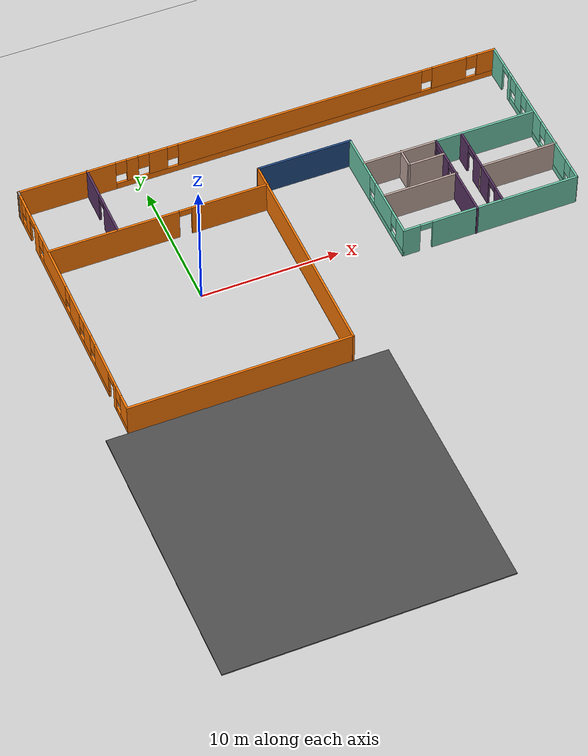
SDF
<sdf version="1.6">
 <world name="default">
  <model name="ground_plane">
   <static>1</static>
   <link name="link">
    <collision name="collision">
     <geometry><plane><normal>0 0 1</normal><size>100 100</size></plane></geometry>
     <surface>
      <contact><collide_bitmask>65535</collide_bitmask></contact>
      <friction><ode><mu>100</mu><mu2>50</mu2></ode></friction>
     </surface>
    </collision>
    <visual name="visual">
     <cast_shadows>0</cast_shadows>
     <geometry><plane><normal>0 0 1</normal><size>100 100</size></plane></geometry>
     <material>
      <script><uri>file://media/materials/scripts/gazebo.material</uri><name>Gazebo/Grey</name></script>
     </material>
    </visual>
   </link>
  </model>
  <model name="Thompson">
   <pose>9.07743 1.2048 0 0 -0 0</pose>
   <link name="Wall_15">
    <pose>-0.019631 10.2942 0 0 -0 0</pose>
    <visual name="Wall_15_Visual_0">
     <pose>-14.3246 0 1.25 0 -0 0</pose>
     <geometry><box><size>7.10078 0.15 2.5</size></box></geometry>
     <material>
      <script><uri>file://media/materials/scripts/gazebo.material</uri><name>Gazebo/Grey</name></script>
      <ambient>0.996078 0.47451 0.0196078 1</ambient>
     </material>
     <meta><layer>0</layer></meta>
    </visual>
    <collision name="Wall_15_Collision_0">
     <geometry><box><size>7.10078 0.15 2.5</size></box></geometry>
     <pose>-14.3246 0 1.25 0 -0 0</pose>
    </collision>
    <visual name="Wall_15_Visual_1">
     <pose>3.55039 0 0.25 0 -0 0</pose>
     <geometry><box><size>28.6492 0.15 0.5</size></box></geometry>
     <material>
      <script><uri>file://media/materials/scripts/gazebo.material</uri><name>Gazebo/Grey</name></script>
      <ambient>0.996078 0.47451 0.0196078 1</ambient>
     </material>
     <meta><layer>0</layer></meta>
    </visual>
    <collision name="Wall_15_Collision_1">
     <geometry><box><size>28.6492 0.15 0.5</size></box></geometry>
     <pose>3.55039 0 0.25 0 -0 0</pose>
    </collision>
    <visual name="Wall_15_Visual_2">
     <pose>-9.54752 0 1.5 0 -0 0</pose>
     <geometry><box><size>0.853402 0.15 2</size></box></geometry>
     <material>
      <script><uri>file://media/materials/scripts/gazebo.material</uri><name>Gazebo/Grey</name></script>
      <ambient>0.996078 0.47451 0.0196078 1</ambient>
     </material>
     <meta><layer>0</layer></meta>
    </visual>
    <collision name="Wall_15_Collision_2">
     <geometry><box><size>0.853402 0.15 2</size></box></geometry>
     <pose>-9.54752 0 1.5 0 -0 0</pose>
    </collision>
    <visual name="Wall_15_Visual_3">
     <pose>-7.64786 0 1.5 0 -0 0</pose>
     <geometry><box><size>1.3459 0.15 2</size></box></geometry>
     <material>
      <script><uri>file://media/materials/scripts/gazebo.material</uri><name>Gazebo/Grey</name></script>
      <ambient>0.996078 0.47451 0.0196078 1</ambient>
     </material>
     <meta><layer>0</layer></meta>
    </visual>
    <collision name="Wall_15_Collision_3">
     <geometry><box><size>1.3459 0.15 2</size></box></geometry>
     <pose>-7.64786 0 1.5 0 -0 0</pose>
    </collision>
    <visual name="Wall_15_Visual_4">
     <pose>3.0113 0 1.5 0 -0 0</pose>
     <geometry><box><size>18.3724 0.15 2</size></box></geometry>
     <material>
      <script><uri>file://media/materials/scripts/gazebo.material</uri><name>Gazebo/Grey</name></script>
      <ambient>0.996078 0.47451 0.0196078 1</ambient>
     </material>
     <meta><layer>0</layer></meta>
    </visual>
    <collision name="Wall_15_Collision_4">
     <geometry><box><size>18.3724 0.15 2</size></box></geometry>
     <pose>3.0113 0 1.5 0 -0 0</pose>
    </collision>
    <visual name="Wall_15_Visual_5">
     <pose>14.3213 0 1.5 0 -0 0</pose>
     <geometry><box><size>2.64752 0.15 2</size></box></geometry>
     <material>
      <script><uri>file://media/materials/scripts/gazebo.material</uri><name>Gazebo/Grey</name></script>
      <ambient>0.996078 0.47451 0.0196078 1</ambient>
     </material>
     <meta><layer>0</layer></meta>
    </visual>
    <collision name="Wall_15_Collision_5">
     <geometry><box><size>2.64752 0.15 2</size></box></geometry>
     <pose>14.3213 0 1.5 0 -0 0</pose>
    </collision>
    <visual name="Wall_15_Visual_6">
     <pose>17.16 0 1.5 0 -0 0</pose>
     <geometry><box><size>1.42996 0.15 2</size></box></geometry>
     <material>
      <script><uri>file://media/materials/scripts/gazebo.material</uri><name>Gazebo/Grey</name></script>
      <ambient>0.996078 0.47451 0.0196078 1</ambient>
     </material>
     <meta><layer>0</layer></meta>
    </visual>
    <collision name="Wall_15_Collision_6">
     <geometry><box><size>1.42996 0.15 2</size></box></geometry>
     <pose>17.16 0 1.5 0 -0 0</pose>
    </collision>
    <visual name="Wall_15_Visual_7">
     <pose>-10.3742 0 1.9 0 -0 0</pose>
     <geometry><box><size>0.8 0.15 1.2</size></box></geometry>
     <material>
      <script><uri>file://media/materials/scripts/gazebo.material</uri><name>Gazebo/Grey</name></script>
      <ambient>0.996078 0.47451 0.0196078 1</ambient>
     </material>
     <meta><layer>0</layer></meta>
    </visual>
    <collision name="Wall_15_Collision_7">
     <geometry><box><size>0.8 0.15 1.2</size></box></geometry>
     <pose>-10.3742 0 1.9 0 -0 0</pose>
    </collision>
    <visual name="Wall_15_Visual_8">
     <pose>-8.72081 0 1.9 0 -0 0</pose>
     <geometry><box><size>0.8 0.15 1.2</size></box></geometry>
     <material>
      <script><uri>file://media/materials/scripts/gazebo.material</uri><name>Gazebo/Grey</name></script>
      <ambient>0.996078 0.47451 0.0196078 1</ambient>
     </material>
     <meta><layer>0</layer></meta>
    </visual>
    <collision name="Wall_15_Collision_8">
     <geometry><box><size>0.8 0.15 1.2</size></box></geometry>
     <pose>-8.72081 0 1.9 0 -0 0</pose>
    </collision>
    <visual name="Wall_15_Visual_9">
     <pose>-6.57491 0 1.9 0 -0 0</pose>
     <geometry><box><size>0.8 0.15 1.2</size></box></geometry>
     <material>
      <script><uri>file://media/materials/scripts/gazebo.material</uri><name>Gazebo/Grey</name></script>
      <ambient>0.996078 0.47451 0.0196078 1</ambient>
     </material>
     <meta><layer>0</layer></meta>
    </visual>
    <collision name="Wall_15_Collision_9">
     <geometry><box><size>0.8 0.15 1.2</size></box></geometry>
     <pose>-6.57491 0 1.9 0 -0 0</pose>
    </collision>
    <visual name="Wall_15_Visual_10">
     <pose>12.5975 0 1.9 0 -0 0</pose>
     <geometry><box><size>0.8 0.15 1.2</size></box></geometry>
     <material>
      <script><uri>file://media/materials/scripts/gazebo.material</uri><name>Gazebo/Grey</name></script>
      <ambient>0.996078 0.47451 0.0196078 1</ambient>
     </material>
     <meta><layer>0</layer></meta>
    </visual>
    <collision name="Wall_15_Collision_10">
     <geometry><box><size>0.8 0.15 1.2</size></box></geometry>
     <pose>12.5975 0 1.9 0 -0 0</pose>
    </collision>
    <visual name="Wall_15_Visual_11">
     <pose>16.045 0 1.9 0 -0 0</pose>
     <geometry><box><size>0.8 0.15 1.2</size></box></geometry>
     <material>
      <script><uri>file://media/materials/scripts/gazebo.material</uri><name>Gazebo/Grey</name></script>
      <ambient>0.996078 0.47451 0.0196078 1</ambient>
     </material>
     <meta><layer>0</layer></meta>
    </visual>
    <collision name="Wall_15_Collision_11">
     <geometry><box><size>0.8 0.15 1.2</size></box></geometry>
     <pose>16.045 0 1.9 0 -0 0</pose>
    </collision>
   </link>
   <link name="Wall_16">
    <pose>17.7804 3.61924 0 0 -0 -1.5708</pose>
    <visual name="Wall_16_Visual_0">
     <pose>-5.8837 0 1.25 0 -0 0</pose>
     <geometry><box><size>1.7326 0.15 2.5</size></box></geometry>
     <material>
      <script><uri>file://media/materials/scripts/gazebo.material</uri><name>Gazebo/Grey</name></script>
      <ambient>0.435294 0.796078 0.67451 1</ambient>
     </material>
     <meta><layer>0</layer></meta>
    </visual>
    <collision name="Wall_16_Collision_0">
     <geometry><box><size>1.7326 0.15 2.5</size></box></geometry>
     <pose>-5.8837 0 1.25 0 -0 0</pose>
    </collision>
    <visual name="Wall_16_Visual_1">
     <pose>-3.90918 0 1.25 0 -0 0</pose>
     <geometry><box><size>0.416435 0.15 2.5</size></box></geometry>
     <material>
      <script><uri>file://media/materials/scripts/gazebo.material</uri><name>Gazebo/Grey</name></script>
      <ambient>0.435294 0.796078 0.67451 1</ambient>
     </material>
     <meta><layer>0</layer></meta>
    </visual>
    <collision name="Wall_16_Collision_1">
     <geometry><box><size>0.416435 0.15 2.5</size></box></geometry>
     <pose>-3.90918 0 1.25 0 -0 0</pose>
    </collision>
    <visual name="Wall_16_Visual_2">
     <pose>1.52452 0 0.25 0 -0 0</pose>
     <geometry><box><size>10.451 0.15 0.5</size></box></geometry>
     <material>
      <script><uri>file://media/materials/scripts/gazebo.material</uri><name>Gazebo/Grey</name></script>
      <ambient>0.435294 0.796078 0.67451 1</ambient>
     </material>
     <meta><layer>0</layer></meta>
    </visual>
    <collision name="Wall_16_Collision_2">
     <geometry><box><size>10.451 0.15 0.5</size></box></geometry>
     <pose>1.52452 0 0.25 0 -0 0</pose>
    </collision>
    <visual name="Wall_16_Visual_3">
     <pose>-2.43908 0 1.5 0 -0 0</pose>
     <geometry><box><size>0.92376 0.15 2</size></box></geometry>
     <material>
      <script><uri>file://media/materials/scripts/gazebo.material</uri><name>Gazebo/Grey</name></script>
      <ambient>0.435294 0.796078 0.67451 1</ambient>
     </material>
     <meta><layer>0</layer></meta>
    </visual>
    <collision name="Wall_16_Collision_3">
     <geometry><box><size>0.92376 0.15 2</size></box></geometry>
     <pose>-2.43908 0 1.5 0 -0 0</pose>
    </collision>
    <visual name="Wall_16_Visual_4">
     <pose>-0.033885 0 1.5 0 -0 0</pose>
     <geometry><box><size>2.28664 0.15 2</size></box></geometry>
     <material>
      <script><uri>file://media/materials/scripts/gazebo.material</uri><name>Gazebo/Grey</name></script>
      <ambient>0.435294 0.796078 0.67451 1</ambient>
     </material>
     <meta><layer>0</layer></meta>
    </visual>
    <collision name="Wall_16_Collision_4">
     <geometry><box><size>2.28664 0.15 2</size></box></geometry>
     <pose>-0.033885 0 1.5 0 -0 0</pose>
    </collision>
    <visual name="Wall_16_Visual_5">
     <pose>3.44881 0 1.5 0 -0 0</pose>
     <geometry><box><size>3.07876 0.15 2</size></box></geometry>
     <material>
      <script><uri>file://media/materials/scripts/gazebo.material</uri><name>Gazebo/Grey</name></script>
      <ambient>0.435294 0.796078 0.67451 1</ambient>
     </material>
     <meta><layer>0</layer></meta>
    </visual>
    <collision name="Wall_16_Collision_5">
     <geometry><box><size>3.07876 0.15 2</size></box></geometry>
     <pose>3.44881 0 1.5 0 -0 0</pose>
    </collision>
    <visual name="Wall_16_Visual_6">
     <pose>6.2691 0 1.5 0 -0 0</pose>
     <geometry><box><size>0.96181 0.15 2</size></box></geometry>
     <material>
      <script><uri>file://media/materials/scripts/gazebo.material</uri><name>Gazebo/Grey</name></script>
      <ambient>0.435294 0.796078 0.67451 1</ambient>
     </material>
     <meta><layer>0</layer></meta>
    </visual>
    <collision name="Wall_16_Collision_6">
     <geometry><box><size>0.96181 0.15 2</size></box></geometry>
     <pose>6.2691 0 1.5 0 -0 0</pose>
    </collision>
    <visual name="Wall_16_Visual_7">
     <pose>-3.30097 0 1.9 0 -0 0</pose>
     <geometry><box><size>0.8 0.15 1.2</size></box></geometry>
     <material>
      <script><uri>file://media/materials/scripts/gazebo.material</uri><name>Gazebo/Grey</name></script>
      <ambient>0.435294 0.796078 0.67451 1</ambient>
     </material>
     <meta><layer>0</layer></meta>
    </visual>
    <collision name="Wall_16_Collision_7">
     <geometry><box><size>0.8 0.15 1.2</size></box></geometry>
     <pose>-3.30097 0 1.9 0 -0 0</pose>
    </collision>
    <visual name="Wall_16_Visual_8">
     <pose>-1.5772 0 1.9 0 -0 0</pose>
     <geometry><box><size>0.8 0.15 1.2</size></box></geometry>
     <material>
      <script><uri>file://media/materials/scripts/gazebo.material</uri><name>Gazebo/Grey</name></script>
      <ambient>0.435294 0.796078 0.67451 1</ambient>
     </material>
     <meta><layer>0</layer></meta>
    </visual>
    <collision name="Wall_16_Collision_8">
     <geometry><box><size>0.8 0.15 1.2</size></box></geometry>
     <pose>-1.5772 0 1.9 0 -0 0</pose>
    </collision>
    <visual name="Wall_16_Visual_9">
     <pose>1.50943 0 1.9 0 -0 0</pose>
     <geometry><box><size>0.8 0.15 1.2</size></box></geometry>
     <material>
      <script><uri>file://media/materials/scripts/gazebo.material</uri><name>Gazebo/Grey</name></script>
      <ambient>0.435294 0.796078 0.67451 1</ambient>
     </material>
     <meta><layer>0</layer></meta>
    </visual>
    <collision name="Wall_16_Collision_9">
     <geometry><box><size>0.8 0.15 1.2</size></box></geometry>
     <pose>1.50943 0 1.9 0 -0 0</pose>
    </collision>
    <visual name="Wall_16_Visual_10">
     <pose>5.38819 0 1.9 0 -0 0</pose>
     <geometry><box><size>0.8 0.15 1.2</size></box></geometry>
     <material>
      <script><uri>file://media/materials/scripts/gazebo.material</uri><name>Gazebo/Grey</name></script>
      <ambient>0.435294 0.796078 0.67451 1</ambient>
     </material>
     <meta><layer>0</layer></meta>
    </visual>
    <collision name="Wall_16_Collision_10">
     <geometry><box><size>0.8 0.15 1.2</size></box></geometry>
     <pose>5.38819 0 1.9 0 -0 0</pose>
    </collision>
    <visual name="Wall_16_Visual_11">
     <pose>-4.5674 0 2.25 0 -0 0</pose>
     <geometry><box><size>0.9 0.15 0.5</size></box></geometry>
     <material>
      <script><uri>file://media/materials/scripts/gazebo.material</uri><name>Gazebo/Grey</name></script>
      <ambient>0.435294 0.796078 0.67451 1</ambient>
     </material>
     <meta><layer>0</layer></meta>
    </visual>
    <collision name="Wall_16_Collision_11">
     <geometry><box><size>0.9 0.15 0.5</size></box></geometry>
     <pose>-4.5674 0 2.25 0 -0 0</pose>
    </collision>
   </link>
   <link name="Wall_19">
    <collision name="Wall_19_Collision">
     <geometry><box><size>16.5 0.15 2.5</size></box></geometry>
     <pose>0 0 1.25 0 -0 0</pose>
    </collision>
    <visual name="Wall_19_Visual">
     <pose>0 0 1.25 0 -0 0</pose>
     <geometry><box><size>16.5 0.15 2.5</size></box></geometry>
     <material>
      <script><uri>file://media/materials/scripts/gazebo.material</uri><name>Gazebo/Grey</name></script>
      <ambient>0.996078 0.47451 0.0196078 1</ambient>
     </material>
     <meta><layer>0</layer></meta>
    </visual>
    <pose>-1.97014 -2.15348 0 0 -0 -1.5708</pose>
   </link>
   <link name="Wall_21">
    <pose>4.87986 1.47152 0 0 -0 -1.5708</pose>
    <visual name="Wall_21_Visual_0">
     <pose>-2.79191 0 1.25 0 -0 0</pose>
     <geometry><box><size>3.66617 0.15 2.5</size></box></geometry>
     <material>
      <script><uri>file://media/materials/scripts/gazebo.material</uri><name>Gazebo/Grey</name></script>
      <ambient>0.435294 0.796078 0.67451 1</ambient>
     </material>
     <meta><layer>0</layer></meta>
    </visual>
    <collision name="Wall_21_Collision_0">
     <geometry><box><size>3.66617 0.15 2.5</size></box></geometry>
     <pose>-2.79191 0 1.25 0 -0 0</pose>
    </collision>
    <visual name="Wall_21_Visual_1">
     <pose>1.83309 0 0.25 0 -0 0</pose>
     <geometry><box><size>5.58383 0.15 0.5</size></box></geometry>
     <material>
      <script><uri>file://media/materials/scripts/gazebo.material</uri><name>Gazebo/Grey</name></script>
      <ambient>0.435294 0.796078 0.67451 1</ambient>
     </material>
     <meta><layer>0</layer></meta>
    </visual>
    <collision name="Wall_21_Collision_1">
     <geometry><box><size>5.58383 0.15 0.5</size></box></geometry>
     <pose>1.83309 0 0.25 0 -0 0</pose>
    </collision>
    <visual name="Wall_21_Visual_2">
     <pose>1.23529 0 1.5 0 -0 0</pose>
     <geometry><box><size>2.78823 0.15 2</size></box></geometry>
     <material>
      <script><uri>file://media/materials/scripts/gazebo.material</uri><name>Gazebo/Grey</name></script>
      <ambient>0.435294 0.796078 0.67451 1</ambient>
     </material>
     <meta><layer>0</layer></meta>
    </visual>
    <collision name="Wall_21_Collision_2">
     <geometry><box><size>2.78823 0.15 2</size></box></geometry>
     <pose>1.23529 0 1.5 0 -0 0</pose>
    </collision>
    <visual name="Wall_21_Visual_3">
     <pose>4.0272 0 1.5 0 -0 0</pose>
     <geometry><box><size>1.1956 0.15 2</size></box></geometry>
     <material>
      <script><uri>file://media/materials/scripts/gazebo.material</uri><name>Gazebo/Grey</name></script>
      <ambient>0.435294 0.796078 0.67451 1</ambient>
     </material>
     <meta><layer>0</layer></meta>
    </visual>
    <collision name="Wall_21_Collision_3">
     <geometry><box><size>1.1956 0.15 2</size></box></geometry>
     <pose>4.0272 0 1.5 0 -0 0</pose>
    </collision>
    <visual name="Wall_21_Visual_4">
     <pose>-0.558831 0 1.9 0 -0 0</pose>
     <geometry><box><size>0.8 0.15 1.2</size></box></geometry>
     <material>
      <script><uri>file://media/materials/scripts/gazebo.material</uri><name>Gazebo/Grey</name></script>
      <ambient>0.435294 0.796078 0.67451 1</ambient>
     </material>
     <meta><layer>0</layer></meta>
    </visual>
    <collision name="Wall_21_Collision_4">
     <geometry><box><size>0.8 0.15 1.2</size></box></geometry>
     <pose>-0.558831 0 1.9 0 -0 0</pose>
    </collision>
    <visual name="Wall_21_Visual_5">
     <pose>3.0294 0 1.9 0 -0 0</pose>
     <geometry><box><size>0.8 0.15 1.2</size></box></geometry>
     <material>
      <script><uri>file://media/materials/scripts/gazebo.material</uri><name>Gazebo/Grey</name></script>
      <ambient>0.435294 0.796078 0.67451 1</ambient>
     </material>
     <meta><layer>0</layer></meta>
    </visual>
    <collision name="Wall_21_Collision_5">
     <geometry><box><size>0.8 0.15 1.2</size></box></geometry>
     <pose>3.0294 0 1.9 0 -0 0</pose>
    </collision>
   </link>
   <link name="Wall_23">
    <pose>11.3049 -3.07848 0 0 -0 0</pose>
    <visual name="Wall_23_Visual_0">
     <pose>-5.85955 0 1.25 0 -0 0</pose>
     <geometry><box><size>1.2809 0.15 2.5</size></box></geometry>
     <material>
      <script><uri>file://media/materials/scripts/gazebo.material</uri><name>Gazebo/Grey</name></script>
      <ambient>0.435294 0.796078 0.67451 1</ambient>
     </material>
     <meta><layer>0</layer></meta>
    </visual>
    <collision name="Wall_23_Collision_0">
     <geometry><box><size>1.2809 0.15 2.5</size></box></geometry>
     <pose>-5.85955 0 1.25 0 -0 0</pose>
    </collision>
    <visual name="Wall_23_Visual_1">
     <pose>1.09045 0 1.25 0 -0 0</pose>
     <geometry><box><size>10.8191 0.15 2.5</size></box></geometry>
     <material>
      <script><uri>file://media/materials/scripts/gazebo.material</uri><name>Gazebo/Grey</name></script>
      <ambient>0.435294 0.796078 0.67451 1</ambient>
     </material>
     <meta><layer>0</layer></meta>
    </visual>
    <collision name="Wall_23_Collision_1">
     <geometry><box><size>10.8191 0.15 2.5</size></box></geometry>
     <pose>1.09045 0 1.25 0 -0 0</pose>
    </collision>
    <visual name="Wall_23_Visual_2">
     <pose>-4.7691 0 2.25 0 -0 0</pose>
     <geometry><box><size>0.9 0.15 0.5</size></box></geometry>
     <material>
      <script><uri>file://media/materials/scripts/gazebo.material</uri><name>Gazebo/Grey</name></script>
      <ambient>0.435294 0.796078 0.67451 1</ambient>
     </material>
     <meta><layer>0</layer></meta>
    </visual>
    <collision name="Wall_23_Collision_2">
     <geometry><box><size>0.9 0.15 0.5</size></box></geometry>
     <pose>-4.7691 0 2.25 0 -0 0</pose>
    </collision>
   </link>
   <link name="Wall_25">
    <pose>-9.85667 4.42323 0 0 -0 3.14159</pose>
    <visual name="Wall_25_Visual_0">
     <pose>-5.16838 0 1.25 0 -0 0</pose>
     <geometry><box><size>5.66324 0.15 2.5</size></box></geometry>
     <material>
      <script><uri>file://media/materials/scripts/gazebo.material</uri><name>Gazebo/Grey</name></script>
      <ambient>0.996078 0.47451 0.0196078 1</ambient>
     </material>
     <meta><layer>0</layer></meta>
    </visual>
    <collision name="Wall_25_Collision_0">
     <geometry><box><size>5.66324 0.15 2.5</size></box></geometry>
     <pose>-5.16838 0 1.25 0 -0 0</pose>
    </collision>
    <visual name="Wall_25_Visual_1">
     <pose>3.28162 0 1.25 0 -0 0</pose>
     <geometry><box><size>9.43675 0.15 2.5</size></box></geometry>
     <material>
      <script><uri>file://media/materials/scripts/gazebo.material</uri><name>Gazebo/Grey</name></script>
      <ambient>0.996078 0.47451 0.0196078 1</ambient>
     </material>
     <meta><layer>0</layer></meta>
    </visual>
    <collision name="Wall_25_Collision_1">
     <geometry><box><size>9.43675 0.15 2.5</size></box></geometry>
     <pose>3.28162 0 1.25 0 -0 0</pose>
    </collision>
    <visual name="Wall_25_Visual_2">
     <pose>-1.88675 0 2.25 0 -0 0</pose>
     <geometry><box><size>0.9 0.15 0.5</size></box></geometry>
     <material>
      <script><uri>file://media/materials/scripts/gazebo.material</uri><name>Gazebo/Grey</name></script>
      <ambient>0.996078 0.47451 0.0196078 1</ambient>
     </material>
     <meta><layer>0</layer></meta>
    </visual>
    <collision name="Wall_25_Collision_2">
     <geometry><box><size>0.9 0.15 0.5</size></box></geometry>
     <pose>-1.88675 0 2.25 0 -0 0</pose>
    </collision>
   </link>
   <link name="Wall_27">
    <pose>-12.8378 7.40348 0 0 -0 -1.5708</pose>
    <visual name="Wall_27_Visual_0">
     <pose>-1.76439 0 1.25 0 -0 0</pose>
     <geometry><box><size>2.47122 0.15 2.5</size></box></geometry>
     <material>
      <script><uri>file://media/materials/scripts/gazebo.material</uri><name>Gazebo/Grey</name></script>
      <ambient>0.360784 0.207843 0.4 1</ambient>
     </material>
     <meta><layer>0</layer></meta>
    </visual>
    <collision name="Wall_27_Collision_0">
     <geometry><box><size>2.47122 0.15 2.5</size></box></geometry>
     <pose>-1.76439 0 1.25 0 -0 0</pose>
    </collision>
    <visual name="Wall_27_Visual_1">
     <pose>1.68561 0 1.25 0 -0 0</pose>
     <geometry><box><size>2.62878 0.15 2.5</size></box></geometry>
     <material>
      <script><uri>file://media/materials/scripts/gazebo.material</uri><name>Gazebo/Grey</name></script>
      <ambient>0.360784 0.207843 0.4 1</ambient>
     </material>
     <meta><layer>0</layer></meta>
    </visual>
    <collision name="Wall_27_Collision_1">
     <geometry><box><size>2.62878 0.15 2.5</size></box></geometry>
     <pose>1.68561 0 1.25 0 -0 0</pose>
    </collision>
    <visual name="Wall_27_Visual_2">
     <pose>-0.078778 0 2.25 0 -0 0</pose>
     <geometry><box><size>0.9 0.15 0.5</size></box></geometry>
     <material>
      <script><uri>file://media/materials/scripts/gazebo.material</uri><name>Gazebo/Grey</name></script>
      <ambient>0.360784 0.207843 0.4 1</ambient>
     </material>
     <meta><layer>0</layer></meta>
    </visual>
    <collision name="Wall_27_Collision_2">
     <geometry><box><size>0.9 0.15 0.5</size></box></geometry>
     <pose>-0.078778 0 2.25 0 -0 0</pose>
    </collision>
   </link>
   <link name="Wall_3">
    <pose>-17.8196 -0.130763 0 0 -0 -1.5708</pose>
    <visual name="Wall_3_Visual_0">
     <pose>-9.95861 0 1.25 0 -0 0</pose>
     <geometry><box><size>0.582773 0.15 2.5</size></box></geometry>
     <material>
      <script><uri>file://media/materials/scripts/gazebo.material</uri><name>Gazebo/Grey</name></script>
      <ambient>0.996078 0.47451 0.0196078 1</ambient>
     </material>
     <meta><layer>0</layer></meta>
    </visual>
    <collision name="Wall_3_Collision_0">
     <geometry><box><size>0.582773 0.15 2.5</size></box></geometry>
     <pose>-9.95861 0 1.25 0 -0 0</pose>
    </collision>
    <visual name="Wall_3_Visual_1">
     <pose>-6.72654 0 1.25 0 -0 0</pose>
     <geometry><box><size>0.872952 0.15 2.5</size></box></geometry>
     <material>
      <script><uri>file://media/materials/scripts/gazebo.material</uri><name>Gazebo/Grey</name></script>
      <ambient>0.996078 0.47451 0.0196078 1</ambient>
     </material>
     <meta><layer>0</layer></meta>
    </visual>
    <collision name="Wall_3_Collision_1">
     <geometry><box><size>0.872952 0.15 2.5</size></box></geometry>
     <pose>-6.72654 0 1.25 0 -0 0</pose>
    </collision>
    <visual name="Wall_3_Visual_2">
     <pose>8.01044 0 1.25 0 -0 0</pose>
     <geometry><box><size>0.448286 0.15 2.5</size></box></geometry>
     <material>
      <script><uri>file://media/materials/scripts/gazebo.material</uri><name>Gazebo/Grey</name></script>
      <ambient>0.996078 0.47451 0.0196078 1</ambient>
     </material>
     <meta><layer>0</layer></meta>
    </visual>
    <collision name="Wall_3_Collision_2">
     <geometry><box><size>0.448286 0.15 2.5</size></box></geometry>
     <pose>8.01044 0 1.25 0 -0 0</pose>
    </collision>
    <visual name="Wall_3_Visual_3">
     <pose>-8.86512 0 0.25 0 -0 0</pose>
     <geometry><box><size>1.60421 0.15 0.5</size></box></geometry>
     <material>
      <script><uri>file://media/materials/scripts/gazebo.material</uri><name>Gazebo/Grey</name></script>
      <ambient>0.996078 0.47451 0.0196078 1</ambient>
     </material>
     <meta><layer>0</layer></meta>
    </visual>
    <collision name="Wall_3_Collision_3">
     <geometry><box><size>1.60421 0.15 0.5</size></box></geometry>
     <pose>-8.86512 0 0.25 0 -0 0</pose>
    </collision>
    <visual name="Wall_3_Visual_4">
     <pose>0.298114 0 0.25 0 -0 0</pose>
     <geometry><box><size>13.1764 0.15 0.5</size></box></geometry>
     <material>
      <script><uri>file://media/materials/scripts/gazebo.material</uri><name>Gazebo/Grey</name></script>
      <ambient>0.996078 0.47451 0.0196078 1</ambient>
     </material>
     <meta><layer>0</layer></meta>
    </visual>
    <collision name="Wall_3_Collision_4">
     <geometry><box><size>13.1764 0.15 0.5</size></box></geometry>
     <pose>0.298114 0 0.25 0 -0 0</pose>
    </collision>
    <visual name="Wall_3_Visual_5">
     <pose>9.24229 0 0.25 0 -0 0</pose>
     <geometry><box><size>2.01542 0.15 0.5</size></box></geometry>
     <material>
      <script><uri>file://media/materials/scripts/gazebo.material</uri><name>Gazebo/Grey</name></script>
      <ambient>0.996078 0.47451 0.0196078 1</ambient>
     </material>
     <meta><layer>0</layer></meta>
    </visual>
    <collision name="Wall_3_Collision_5">
     <geometry><box><size>2.01542 0.15 0.5</size></box></geometry>
     <pose>9.24229 0 0.25 0 -0 0</pose>
    </collision>
    <visual name="Wall_3_Visual_6">
     <pose>-8.46512 0 1.5 0 -0 0</pose>
     <geometry><box><size>0.804209 0.15 2</size></box></geometry>
     <material>
      <script><uri>file://media/materials/scripts/gazebo.material</uri><name>Gazebo/Grey</name></script>
      <ambient>0.996078 0.47451 0.0196078 1</ambient>
     </material>
     <meta><layer>0</layer></meta>
    </visual>
    <collision name="Wall_3_Collision_6">
     <geometry><box><size>0.804209 0.15 2</size></box></geometry>
     <pose>-8.46512 0 1.5 0 -0 0</pose>
    </collision>
    <visual name="Wall_3_Visual_7">
     <pose>-8.46512 0 1.5 0 -0 0</pose>
     <geometry><box><size>0.804209 0.15 2</size></box></geometry>
     <material>
      <script><uri>file://media/materials/scripts/gazebo.material</uri><name>Gazebo/Grey</name></script>
      <ambient>0.996078 0.47451 0.0196078 1</ambient>
     </material>
     <meta><layer>0</layer></meta>
    </visual>
    <collision name="Wall_3_Collision_7">
     <geometry><box><size>0.804209 0.15 2</size></box></geometry>
     <pose>-8.46512 0 1.5 0 -0 0</pose>
    </collision>
    <visual name="Wall_3_Visual_8">
     <pose>-3.32202 0 1.5 0 -0 0</pose>
     <geometry><box><size>4.3361 0.15 2</size></box></geometry>
     <material>
      <script><uri>file://media/materials/scripts/gazebo.material</uri><name>Gazebo/Grey</name></script>
      <ambient>0.996078 0.47451 0.0196078 1</ambient>
     </material>
     <meta><layer>0</layer></meta>
    </visual>
    <collision name="Wall_3_Collision_8">
     <geometry><box><size>4.3361 0.15 2</size></box></geometry>
     <pose>-3.32202 0 1.5 0 -0 0</pose>
    </collision>
    <visual name="Wall_3_Visual_9">
     <pose>0.565237 0 1.5 0 -0 0</pose>
     <geometry><box><size>1.83841 0.15 2</size></box></geometry>
     <material>
      <script><uri>file://media/materials/scripts/gazebo.material</uri><name>Gazebo/Grey</name></script>
      <ambient>0.996078 0.47451 0.0196078 1</ambient>
     </material>
     <meta><layer>0</layer></meta>
    </visual>
    <collision name="Wall_3_Collision_9">
     <geometry><box><size>1.83841 0.15 2</size></box></geometry>
     <pose>0.565237 0 1.5 0 -0 0</pose>
    </collision>
    <visual name="Wall_3_Visual_10">
     <pose>2.90462 0 1.5 0 -0 0</pose>
     <geometry><box><size>1.24037 0.15 2</size></box></geometry>
     <material>
      <script><uri>file://media/materials/scripts/gazebo.material</uri><name>Gazebo/Grey</name></script>
      <ambient>0.996078 0.47451 0.0196078 1</ambient>
     </material>
     <meta><layer>0</layer></meta>
    </visual>
    <collision name="Wall_3_Collision_10">
     <geometry><box><size>1.24037 0.15 2</size></box></geometry>
     <pose>2.90462 0 1.5 0 -0 0</pose>
    </collision>
    <visual name="Wall_3_Visual_11">
     <pose>5.60555 0 1.5 0 -0 0</pose>
     <geometry><box><size>2.56148 0.15 2</size></box></geometry>
     <material>
      <script><uri>file://media/materials/scripts/gazebo.material</uri><name>Gazebo/Grey</name></script>
      <ambient>0.996078 0.47451 0.0196078 1</ambient>
     </material>
     <meta><layer>0</layer></meta>
    </visual>
    <collision name="Wall_3_Collision_11">
     <geometry><box><size>2.56148 0.15 2</size></box></geometry>
     <pose>5.60555 0 1.5 0 -0 0</pose>
    </collision>
    <visual name="Wall_3_Visual_12">
     <pose>5.60555 0 1.5 0 -0 0</pose>
     <geometry><box><size>2.56148 0.15 2</size></box></geometry>
     <material>
      <script><uri>file://media/materials/scripts/gazebo.material</uri><name>Gazebo/Grey</name></script>
      <ambient>0.996078 0.47451 0.0196078 1</ambient>
     </material>
     <meta><layer>0</layer></meta>
    </visual>
    <collision name="Wall_3_Collision_12">
     <geometry><box><size>2.56148 0.15 2</size></box></geometry>
     <pose>5.60555 0 1.5 0 -0 0</pose>
    </collision>
    <visual name="Wall_3_Visual_13">
     <pose>9.64229 0 1.5 0 -0 0</pose>
     <geometry><box><size>1.21542 0.15 2</size></box></geometry>
     <material>
      <script><uri>file://media/materials/scripts/gazebo.material</uri><name>Gazebo/Grey</name></script>
      <ambient>0.996078 0.47451 0.0196078 1</ambient>
     </material>
     <meta><layer>0</layer></meta>
    </visual>
    <collision name="Wall_3_Collision_13">
     <geometry><box><size>1.21542 0.15 2</size></box></geometry>
     <pose>9.64229 0 1.5 0 -0 0</pose>
    </collision>
    <visual name="Wall_3_Visual_14">
     <pose>-9.26723 0 1.9 0 -0 0</pose>
     <geometry><box><size>0.8 0.15 1.2</size></box></geometry>
     <material>
      <script><uri>file://media/materials/scripts/gazebo.material</uri><name>Gazebo/Grey</name></script>
      <ambient>0.996078 0.47451 0.0196078 1</ambient>
     </material>
     <meta><layer>0</layer></meta>
    </visual>
    <collision name="Wall_3_Collision_14">
     <geometry><box><size>0.8 0.15 1.2</size></box></geometry>
     <pose>-9.26723 0 1.9 0 -0 0</pose>
    </collision>
    <visual name="Wall_3_Visual_15">
     <pose>-5.89006 0 1.9 0 -0 0</pose>
     <geometry><box><size>0.8 0.15 1.2</size></box></geometry>
     <material>
      <script><uri>file://media/materials/scripts/gazebo.material</uri><name>Gazebo/Grey</name></script>
      <ambient>0.996078 0.47451 0.0196078 1</ambient>
     </material>
     <meta><layer>0</layer></meta>
    </visual>
    <collision name="Wall_3_Collision_15">
     <geometry><box><size>0.8 0.15 1.2</size></box></geometry>
     <pose>-5.89006 0 1.9 0 -0 0</pose>
    </collision>
    <visual name="Wall_3_Visual_16">
     <pose>8.63458 0 1.9 0 -0 0</pose>
     <geometry><box><size>0.8 0.15 1.2</size></box></geometry>
     <material>
      <script><uri>file://media/materials/scripts/gazebo.material</uri><name>Gazebo/Grey</name></script>
      <ambient>0.996078 0.47451 0.0196078 1</ambient>
     </material>
     <meta><layer>0</layer></meta>
    </visual>
    <collision name="Wall_3_Collision_16">
     <geometry><box><size>0.8 0.15 1.2</size></box></geometry>
     <pose>8.63458 0 1.9 0 -0 0</pose>
    </collision>
    <visual name="Wall_3_Visual_17">
     <pose>-0.753966 0 1.9 0 -0 0</pose>
     <geometry><box><size>0.8 0.15 1.2</size></box></geometry>
     <material>
      <script><uri>file://media/materials/scripts/gazebo.material</uri><name>Gazebo/Grey</name></script>
      <ambient>0.996078 0.47451 0.0196078 1</ambient>
     </material>
     <meta><layer>0</layer></meta>
    </visual>
    <collision name="Wall_3_Collision_17">
     <geometry><box><size>0.8 0.15 1.2</size></box></geometry>
     <pose>-0.753966 0 1.9 0 -0 0</pose>
    </collision>
    <visual name="Wall_3_Visual_18">
     <pose>1.88444 0 1.9 0 -0 0</pose>
     <geometry><box><size>0.8 0.15 1.2</size></box></geometry>
     <material>
      <script><uri>file://media/materials/scripts/gazebo.material</uri><name>Gazebo/Grey</name></script>
      <ambient>0.996078 0.47451 0.0196078 1</ambient>
     </material>
     <meta><layer>0</layer></meta>
    </visual>
    <collision name="Wall_3_Collision_18">
     <geometry><box><size>0.8 0.15 1.2</size></box></geometry>
     <pose>1.88444 0 1.9 0 -0 0</pose>
    </collision>
    <visual name="Wall_3_Visual_19">
     <pose>3.92481 0 1.9 0 -0 0</pose>
     <geometry><box><size>0.8 0.15 1.2</size></box></geometry>
     <material>
      <script><uri>file://media/materials/scripts/gazebo.material</uri><name>Gazebo/Grey</name></script>
      <ambient>0.996078 0.47451 0.0196078 1</ambient>
     </material>
     <meta><layer>0</layer></meta>
    </visual>
    <collision name="Wall_3_Collision_19">
     <geometry><box><size>0.8 0.15 1.2</size></box></geometry>
     <pose>3.92481 0 1.9 0 -0 0</pose>
    </collision>
    <visual name="Wall_3_Visual_20">
     <pose>-7.61302 0 2.25 0 -0 0</pose>
     <geometry><box><size>0.9 0.15 0.5</size></box></geometry>
     <material>
      <script><uri>file://media/materials/scripts/gazebo.material</uri><name>Gazebo/Grey</name></script>
      <ambient>0.996078 0.47451 0.0196078 1</ambient>
     </material>
     <meta><layer>0</layer></meta>
    </visual>
    <collision name="Wall_3_Collision_20">
     <geometry><box><size>0.9 0.15 0.5</size></box></geometry>
     <pose>-7.61302 0 2.25 0 -0 0</pose>
    </collision>
    <visual name="Wall_3_Visual_21">
     <pose>-7.61302 0 2.25 0 -0 0</pose>
     <geometry><box><size>0.9 0.15 0.5</size></box></geometry>
     <material>
      <script><uri>file://media/materials/scripts/gazebo.material</uri><name>Gazebo/Grey</name></script>
      <ambient>0.996078 0.47451 0.0196078 1</ambient>
     </material>
     <meta><layer>0</layer></meta>
    </visual>
    <collision name="Wall_3_Collision_21">
     <geometry><box><size>0.9 0.15 0.5</size></box></geometry>
     <pose>-7.61302 0 2.25 0 -0 0</pose>
    </collision>
    <visual name="Wall_3_Visual_22">
     <pose>7.33629 0 2.25 0 -0 0</pose>
     <geometry><box><size>0.9 0.15 0.5</size></box></geometry>
     <material>
      <script><uri>file://media/materials/scripts/gazebo.material</uri><name>Gazebo/Grey</name></script>
      <ambient>0.996078 0.47451 0.0196078 1</ambient>
     </material>
     <meta><layer>0</layer></meta>
    </visual>
    <collision name="Wall_3_Collision_22">
     <geometry><box><size>0.9 0.15 0.5</size></box></geometry>
     <pose>7.33629 0 2.25 0 -0 0</pose>
    </collision>
    <visual name="Wall_3_Visual_23">
     <pose>7.33629 0 2.25 0 -0 0</pose>
     <geometry><box><size>0.9 0.15 0.5</size></box></geometry>
     <material>
      <script><uri>file://media/materials/scripts/gazebo.material</uri><name>Gazebo/Grey</name></script>
      <ambient>0.996078 0.47451 0.0196078 1</ambient>
     </material>
     <meta><layer>0</layer></meta>
    </visual>
    <collision name="Wall_3_Collision_23">
     <geometry><box><size>0.9 0.15 0.5</size></box></geometry>
     <pose>7.33629 0 2.25 0 -0 0</pose>
    </collision>
   </link>
   <link name="Wall_30">
    <pose>10.3078 0.286514 0 0 -0 -1.5708</pose>
    <visual name="Wall_30_Visual_0">
     <pose>-3.31288 0 1.25 0 -0 0</pose>
     <geometry><box><size>0.334019 0.15 2.5</size></box></geometry>
     <material>
      <script><uri>file://media/materials/scripts/gazebo.material</uri><name>Gazebo/Grey</name></script>
      <ambient>0.360784 0.207843 0.4 1</ambient>
     </material>
     <meta><layer>0</layer></meta>
    </visual>
    <collision name="Wall_30_Collision_0">
     <geometry><box><size>0.334019 0.15 2.5</size></box></geometry>
     <pose>-3.31288 0 1.25 0 -0 0</pose>
    </collision>
    <visual name="Wall_30_Visual_1">
     <pose>-1.71609 0 1.25 0 -0 0</pose>
     <geometry><box><size>1.05955 0.15 2.5</size></box></geometry>
     <material>
      <script><uri>file://media/materials/scripts/gazebo.material</uri><name>Gazebo/Grey</name></script>
      <ambient>0.360784 0.207843 0.4 1</ambient>
     </material>
     <meta><layer>0</layer></meta>
    </visual>
    <collision name="Wall_30_Collision_1">
     <geometry><box><size>1.05955 0.15 2.5</size></box></geometry>
     <pose>-1.71609 0 1.25 0 -0 0</pose>
    </collision>
    <visual name="Wall_30_Visual_2">
     <pose>1.59679 0 1.25 0 -0 0</pose>
     <geometry><box><size>3.7662 0.15 2.5</size></box></geometry>
     <material>
      <script><uri>file://media/materials/scripts/gazebo.material</uri><name>Gazebo/Grey</name></script>
      <ambient>0.360784 0.207843 0.4 1</ambient>
     </material>
     <meta><layer>0</layer></meta>
    </visual>
    <collision name="Wall_30_Collision_2">
     <geometry><box><size>3.7662 0.15 2.5</size></box></geometry>
     <pose>1.59679 0 1.25 0 -0 0</pose>
    </collision>
    <visual name="Wall_30_Visual_3">
     <pose>-2.69587 0 2.25 0 -0 0</pose>
     <geometry><box><size>0.9 0.15 0.5</size></box></geometry>
     <material>
      <script><uri>file://media/materials/scripts/gazebo.material</uri><name>Gazebo/Grey</name></script>
      <ambient>0.360784 0.207843 0.4 1</ambient>
     </material>
     <meta><layer>0</layer></meta>
    </visual>
    <collision name="Wall_30_Collision_3">
     <geometry><box><size>0.9 0.15 0.5</size></box></geometry>
     <pose>-2.69587 0 2.25 0 -0 0</pose>
    </collision>
    <visual name="Wall_30_Visual_4">
     <pose>-0.736313 0 2.25 0 -0 0</pose>
     <geometry><box><size>0.9 0.15 0.5</size></box></geometry>
     <material>
      <script><uri>file://media/materials/scripts/gazebo.material</uri><name>Gazebo/Grey</name></script>
      <ambient>0.360784 0.207843 0.4 1</ambient>
     </material>
     <meta><layer>0</layer></meta>
    </visual>
    <collision name="Wall_30_Collision_4">
     <geometry><box><size>0.9 0.15 0.5</size></box></geometry>
     <pose>-0.736313 0 2.25 0 -0 0</pose>
    </collision>
   </link>
   <link name="Wall_36">
    <collision name="Wall_36_Collision">
     <geometry><box><size>5.75 0.15 2.5</size></box></geometry>
     <pose>0 0 1.25 0 -0 0</pose>
    </collision>
    <visual name="Wall_36_Visual">
     <pose>0 0 1.25 0 -0 0</pose>
     <geometry><box><size>5.75 0.15 2.5</size></box></geometry>
     <material>
      <script><uri>file://media/materials/scripts/gazebo.material</uri><name>Gazebo/Grey</name></script>
      <ambient>0.760784 0.662745 0.627451 1</ambient>
     </material>
     <meta><layer>0</layer></meta>
    </visual>
    <pose>15.0196 0.326802 0 0 -0 0</pose>
   </link>
   <link name="Wall_38">
    <collision name="Wall_38_Collision">
     <geometry><box><size>5.5 0.15 2.5</size></box></geometry>
     <pose>0 0 1.25 0 -0 0</pose>
    </collision>
    <visual name="Wall_38_Visual">
     <pose>0 0 1.25 0 -0 0</pose>
     <geometry><box><size>5.5 0.15 2.5</size></box></geometry>
     <material>
      <script><uri>file://media/materials/scripts/gazebo.material</uri><name>Gazebo/Grey</name></script>
      <ambient>0.760784 0.662745 0.627451 1</ambient>
     </material>
     <meta><layer>0</layer></meta>
    </visual>
    <pose>7.68262 0.380002 0 0 -0 3.14159</pose>
   </link>
   <link name="Wall_4">
    <collision name="Wall_4_Collision">
     <geometry><box><size>16 0.15 2.5</size></box></geometry>
     <pose>0 0 1.25 0 -0 0</pose>
    </collision>
    <visual name="Wall_4_Visual">
     <pose>0 0 1.25 0 -0 0</pose>
     <geometry><box><size>16 0.15 2.5</size></box></geometry>
     <material>
      <script><uri>file://media/materials/scripts/gazebo.material</uri><name>Gazebo/Grey</name></script>
      <ambient>0.996078 0.47451 0.0196078 1</ambient>
     </material>
     <meta><layer>0</layer></meta>
    </visual>
    <pose>-9.89463 -10.3058 0 0 -0 0</pose>
   </link>
   <link name="Wall_47">
    <collision name="Wall_47_Collision">
     <geometry><box><size>2.75 0.15 2.5</size></box></geometry>
     <pose>0 0 1.25 0 -0 0</pose>
    </collision>
    <visual name="Wall_47_Visual">
     <pose>0 0 1.25 0 -0 0</pose>
     <geometry><box><size>2.75 0.15 2.5</size></box></geometry>
     <material>
      <script><uri>file://media/materials/scripts/gazebo.material</uri><name>Gazebo/Grey</name></script>
      <ambient>0.760784 0.662745 0.627451 1</ambient>
     </material>
     <meta><layer>0</layer></meta>
    </visual>
    <pose>8.9976 2.37502 0 0 -0 0</pose>
   </link>
   <link name="Wall_51">
    <collision name="Wall_51_Collision">
     <geometry><box><size>5.5 0.15 2.5</size></box></geometry>
     <pose>0 0 1.25 0 -0 0</pose>
    </collision>
    <visual name="Wall_51_Visual">
     <pose>0 0 1.25 0 -0 0</pose>
     <geometry><box><size>5.5 0.15 2.5</size></box></geometry>
     <material>
      <script><uri>file://media/materials/scripts/gazebo.material</uri><name>Gazebo/Grey</name></script>
      <ambient>0.760784 0.662745 0.627451 1</ambient>
     </material>
     <meta><layer>0</layer></meta>
    </visual>
    <pose>7.63278 3.6914 0 0 -0 3.14159</pose>
   </link>
   <link name="Wall_55">
    <pose>12.2196 -1.3482 0 0 -0 -1.5708</pose>
    <visual name="Wall_55_Visual_0">
     <pose>-1.06552 0 1.25 0 -0 0</pose>
     <geometry><box><size>1.36897 0.15 2.5</size></box></geometry>
     <material>
      <script><uri>file://media/materials/scripts/gazebo.material</uri><name>Gazebo/Grey</name></script>
      <ambient>0.360784 0.207843 0.4 1</ambient>
     </material>
     <meta><layer>0</layer></meta>
    </visual>
    <collision name="Wall_55_Collision_0">
     <geometry><box><size>1.36897 0.15 2.5</size></box></geometry>
     <pose>-1.06552 0 1.25 0 -0 0</pose>
    </collision>
    <visual name="Wall_55_Visual_1">
     <pose>1.13448 0 1.25 0 -0 0</pose>
     <geometry><box><size>1.23103 0.15 2.5</size></box></geometry>
     <material>
      <script><uri>file://media/materials/scripts/gazebo.material</uri><name>Gazebo/Grey</name></script>
      <ambient>0.360784 0.207843 0.4 1</ambient>
     </material>
     <meta><layer>0</layer></meta>
    </visual>
    <collision name="Wall_55_Collision_1">
     <geometry><box><size>1.23103 0.15 2.5</size></box></geometry>
     <pose>1.13448 0 1.25 0 -0 0</pose>
    </collision>
    <visual name="Wall_55_Visual_2">
     <pose>0.068967 0 2.25 0 -0 0</pose>
     <geometry><box><size>0.9 0.15 0.5</size></box></geometry>
     <material>
      <script><uri>file://media/materials/scripts/gazebo.material</uri><name>Gazebo/Grey</name></script>
      <ambient>0.360784 0.207843 0.4 1</ambient>
     </material>
     <meta><layer>0</layer></meta>
    </visual>
    <collision name="Wall_55_Collision_2">
     <geometry><box><size>0.9 0.15 0.5</size></box></geometry>
     <pose>0.068967 0 2.25 0 -0 0</pose>
    </collision>
   </link>
   <link name="Wall_57">
    <collision name="Wall_57_Collision">
     <geometry><box><size>7.5 0.15 2.5</size></box></geometry>
     <pose>0 0 1.25 0 -0 0</pose>
    </collision>
    <visual name="Wall_57_Visual">
     <pose>0 0 1.25 0 -0 0</pose>
     <geometry><box><size>7.5 0.15 2.5</size></box></geometry>
     <material>
      <script><uri>file://media/materials/scripts/gazebo.material</uri><name>Gazebo/Grey</name></script>
      <ambient>0.435294 0.796078 0.67451 1</ambient>
     </material>
     <meta><layer>0</layer></meta>
    </visual>
    <pose>13.9828 3.6914 0 0 -0 0</pose>
   </link>
   <link name="Wall_59">
    <pose>12.2196 2.0018 0 0 -0 1.5708</pose>
    <visual name="Wall_59_Visual_0">
     <pose>-1.13849 0 1.25 0 -0 0</pose>
     <geometry><box><size>1.22302 0.15 2.5</size></box></geometry>
     <material>
      <script><uri>file://media/materials/scripts/gazebo.material</uri><name>Gazebo/Grey</name></script>
      <ambient>0.360784 0.207843 0.4 1</ambient>
     </material>
     <meta><layer>0</layer></meta>
    </visual>
    <collision name="Wall_59_Collision_0">
     <geometry><box><size>1.22302 0.15 2.5</size></box></geometry>
     <pose>-1.13849 0 1.25 0 -0 0</pose>
    </collision>
    <visual name="Wall_59_Visual_1">
     <pose>1.06151 0 1.25 0 -0 0</pose>
     <geometry><box><size>1.37698 0.15 2.5</size></box></geometry>
     <material>
      <script><uri>file://media/materials/scripts/gazebo.material</uri><name>Gazebo/Grey</name></script>
      <ambient>0.360784 0.207843 0.4 1</ambient>
     </material>
     <meta><layer>0</layer></meta>
    </visual>
    <collision name="Wall_59_Collision_1">
     <geometry><box><size>1.37698 0.15 2.5</size></box></geometry>
     <pose>1.06151 0 1.25 0 -0 0</pose>
    </collision>
    <visual name="Wall_59_Visual_2">
     <pose>-0.076984 0 2.25 0 -0 0</pose>
     <geometry><box><size>0.9 0.15 0.5</size></box></geometry>
     <material>
      <script><uri>file://media/materials/scripts/gazebo.material</uri><name>Gazebo/Grey</name></script>
      <ambient>0.360784 0.207843 0.4 1</ambient>
     </material>
     <meta><layer>0</layer></meta>
    </visual>
    <collision name="Wall_59_Collision_2">
     <geometry><box><size>0.9 0.15 0.5</size></box></geometry>
     <pose>-0.076984 0 2.25 0 -0 0</pose>
    </collision>
   </link>
   <link name="Wall_65">
    <collision name="Wall_65_Collision">
     <geometry><box><size>1.5 0.15 2.5</size></box></geometry>
     <pose>0 0 1.25 0 -0 0</pose>
    </collision>
    <visual name="Wall_65_Visual">
     <pose>0 0 1.25 0 -0 0</pose>
     <geometry><box><size>1.5 0.15 2.5</size></box></geometry>
     <material>
      <script><uri>file://media/materials/scripts/gazebo.material</uri><name>Gazebo/Grey</name></script>
      <ambient>0.760784 0.662745 0.627451 1</ambient>
     </material>
     <meta><layer>0</layer></meta>
    </visual>
    <pose>7.6976 3.05002 0 0 -0 1.5708</pose>
   </link>
   <link name="Wall_7">
    <collision name="Wall_7_Collision">
     <geometry><box><size>0.4 0.15 2.5</size></box></geometry>
     <pose>0 0 1.25 0 -0 0</pose>
    </collision>
    <visual name="Wall_7_Visual">
     <pose>0 0 1.25 0 -0 0</pose>
     <geometry><box><size>0.4 0.15 2.5</size></box></geometry>
     <material>
      <script><uri>file://media/materials/scripts/gazebo.material</uri><name>Gazebo/Grey</name></script>
      <ambient>1 1 1 1</ambient>
     </material>
     <meta><layer>0</layer></meta>
    </visual>
    <pose>-17.8196 10.1692 0 0 -0 -1.5708</pose>
   </link>
   <link name="Wall_9">
    <collision name="Wall_9_Collision">
     <geometry><box><size>7 0.15 2.5</size></box></geometry>
     <pose>0 0 1.25 0 -0 0</pose>
    </collision>
    <visual name="Wall_9_Visual">
     <pose>0 0 1.25 0 -0 0</pose>
     <geometry><box><size>7 0.15 2.5</size></box></geometry>
     <material>
      <script><uri>file://media/materials/scripts/gazebo.material</uri><name>Gazebo/Grey</name></script>
      <ambient>0.12549 0.290196 0.529412 1</ambient>
     </material>
     <meta><layer>0</layer></meta>
    </visual>
    <pose>1.45486 6.02152 0 0 -0 0</pose>
   </link>
   <static>1</static>
  </model>
  <model name="asphalt_plane">
   <static>1</static>
   <link name="link">
    <collision name="collision"><geometry><box><size>20 20 0.1</size></box></geometry></collision>
    <visual name="visual">
     <cast_shadows>0</cast_shadows>
     <geometry><box><size>20 20 0.1</size></box></geometry>
     <material>
      <script>
       <uri>model://asphalt_plane/materials/scripts</uri>
       <uri>model://asphalt_plane/materials/textures</uri>
       <name>vrc/asphalt</name>
      </script>
     </material>
    </visual>
   </link>
   <pose>-0.35184 -19.1986 0 0 -0 0</pose>
  </model>
 </world>
</sdf>
